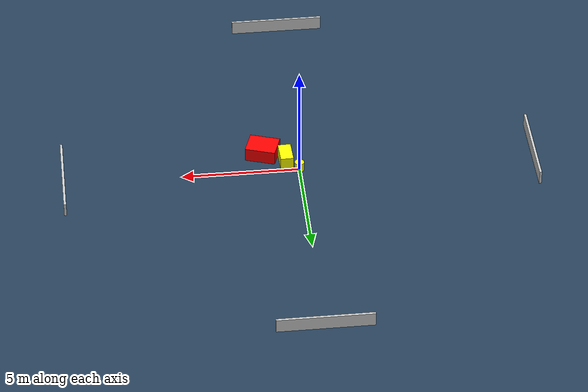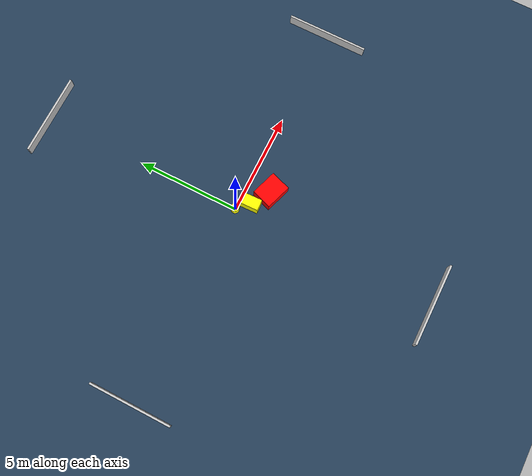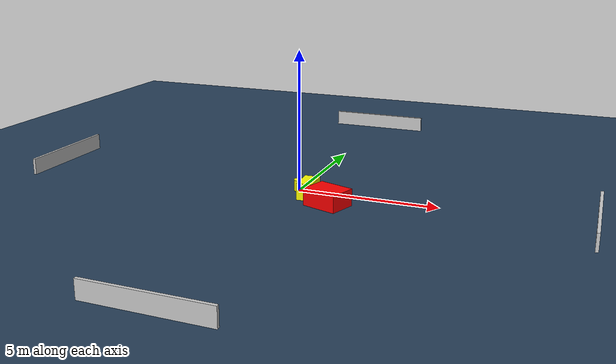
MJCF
<?xml version="1.0" ?>
<mujoco model="generated_environment">
  <option timestep="0.01" integrator="RK4" cone="elliptic"/>
  <default>
    <geom density="1"/>
  </default>
  <asset>
    <texture builtin="gradient" height="3072" name="skybox" rgb1="0.3 0.5 0.7" rgb2="0 0 0" type="skybox" width="512"/>
    <texture builtin="checker" height="300" name="groundplane" rgb1="0.2 0.3 0.4" rgb2="0.1 0.2 0.3" type="2d" width="300"/>
    <material name="groundplane" reflectance="0.2" texrepeat="5 5" texture="groundplane"/>
  </asset>
  <worldbody>
    <light dir="0 0 -1" directional="true" pos="0 0 1.5"/>
    <geom condim="3" friction="0.5 0.005 0.001" material="groundplane" name="floor" pos="0 0 0" size="0 0 0.05" type="plane"/>
    <body name="walls">
      <geom name="wall_1" condim="4" pos="-10.0 0.0 0.3" rgba="0.800000011920929 0.800000011920929 0.800000011920929 1.0" size="0.05 2.0 0.3" type="box"/>
      <geom name="wall_2" condim="4" pos="10.0 0.0 0.3" rgba="0.800000011920929 0.800000011920929 0.800000011920929 1.0" size="0.05 2.0 0.3" type="box"/>
      <geom name="wall_3" condim="4" pos="0.0 -10.0 0.3" rgba="0.800000011920929 0.800000011920929 0.800000011920929 1.0" size="2.0 0.05 0.3" type="box"/>
      <geom name="wall_4" condim="4" pos="0.0 10.0 0.3" rgba="0.800000011920929 0.800000011920929 0.800000011920929 1.0" size="2.0 0.05 0.3" type="box"/>
    </body>
    <body name="robot">
      <joint name="joint_x" type="slide" pos="0 0 0" axis="1 0 0"/>
      <joint name="joint_y" type="slide" pos="0 0 0" axis="0 1 0"/>
      <geom name="robot" type="cylinder" pos="0.0 0.0 0.2" size="0.2 0.2 0.0" mass="5.0" friction="1.0 0.005 0.0001" condim="4" rgba="1.0 1.0 0.0 1.0"/>
    </body>
    <body name="obstacle_1_movable">
      <geom name="obstacle_1_movable" condim="4" pos="0.5372570698543427 -0.513094470259959 0.3" euler="0 0 92.04652561439661" friction="0.0 0.005 0.001" rgba="1.0 1.0 0.0 1.0" size="0.48463231161426634 0.2726994316328111 0.3" type="box" mass="0.1"/>
      <joint type="free"/>
    </body>
    <body name="obstacle_2_static">
      <geom name="obstacle_2_static" condim="4" pos="1.4643991018712663 -1.1328335509728176 0.3" euler="0 0 71.48511728887343" friction="0.0 0.005 0.001" rgba="1.0 0.0 0.0 1.0" size="0.5051885706934431 0.6466339917510541 0.3" type="box"/>
    </body>
  </worldbody>
  <actuator>
    <motor name="actuator_x" joint="joint_x" gear="1" ctrlrange="-1 1"/>
    <motor name="actuator_y" joint="joint_y" gear="1" ctrlrange="-1 1"/>
  </actuator>
</mujoco>
